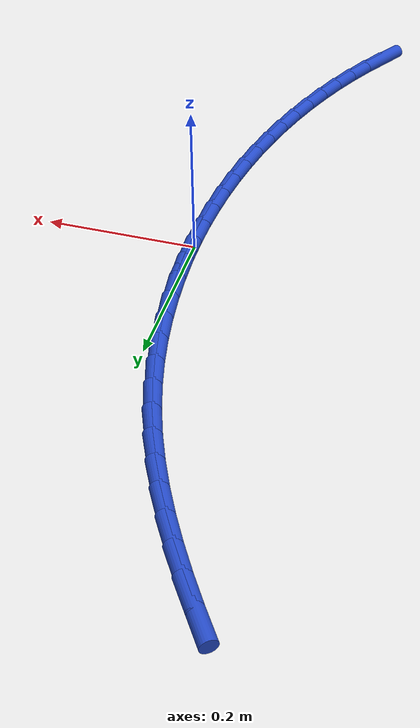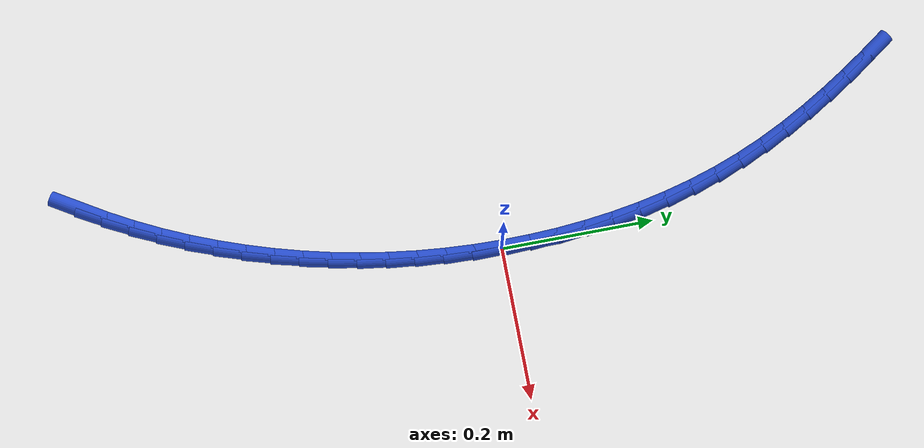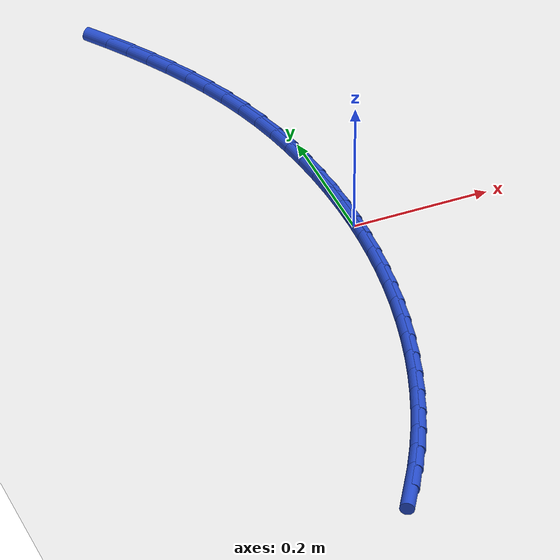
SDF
<sdf version="1.6">
 <world name="default">
  <model name="ground_plane">
   <static>1</static>
   <link name="link">
    <collision name="collision">
     <geometry><plane><normal>0 0 1</normal><size>100 100</size></plane></geometry>
     <surface><friction><ode><mu>100</mu><mu2>50</mu2></ode></friction></surface>
    </collision>
    <visual name="visual">
     <cast_shadows>0</cast_shadows>
     <geometry><plane><normal>0 0 1</normal><size>100 100</size></plane></geometry>
     <material>
      <script><uri>file://media/materials/scripts/gazebo.material</uri><name>Gazebo/WhiteGlow</name></script>
     </material>
    </visual>
   </link>
  </model>
  <model name="line">
   <link name="link_0">
    <pose>1.734723475976807e-17 6.938893903907228e-18 0.01 0 1.57 -1.5604815669485337</pose>
    <collision name="collision">
     <geometry><cylinder><radius>0.01</radius><length>0.08</length></cylinder></geometry>
    </collision>
    <visual name="visual">
     <material>
      <script><name>Gazebo/Blue</name><uri>file://media/materials/scripts/gazebo.material</uri></script>
     </material>
     <geometry><cylinder><radius>0.01</radius><length>0.08</length></cylinder></geometry>
    </visual>
   </link>
   <link name="link_1">
    <pose>-0.00038702410670637374 0.03752005734090273 0.01 0 1.57 -1.524317743062453</pose>
    <collision name="collision">
     <geometry><cylinder><radius>0.01</radius><length>0.08</length></cylinder></geometry>
    </collision>
    <visual name="visual">
     <material>
      <script><name>Gazebo/Blue</name><uri>file://media/materials/scripts/gazebo.material</uri></script>
     </material>
     <geometry><cylinder><radius>0.01</radius><length>0.08</length></cylinder></geometry>
    </visual>
   </link>
   <link name="link_2">
    <pose>-0.0021332918375777895 0.07506444760037405 0.01 0 1.57 -1.4868718520865138</pose>
    <collision name="collision">
     <geometry><cylinder><radius>0.01</radius><length>0.08</length></cylinder></geometry>
    </collision>
    <visual name="visual">
     <material>
      <script><name>Gazebo/Blue</name><uri>file://media/materials/scripts/gazebo.material</uri></script>
     </material>
     <geometry><cylinder><radius>0.01</radius><length>0.08</length></cylinder></geometry>
    </visual>
   </link>
   <link name="link_3">
    <pose>-0.005283089859301521 0.1125076314728183 0.01 0 1.57 -1.447881875070658</pose>
    <collision name="collision">
     <geometry><cylinder><radius>0.01</radius><length>0.08</length></cylinder></geometry>
    </collision>
    <visual name="visual">
     <material>
      <script><name>Gazebo/Blue</name><uri>file://media/materials/scripts/gazebo.material</uri></script>
     </material>
     <geometry><cylinder><radius>0.01</radius><length>0.08</length></cylinder></geometry>
    </visual>
   </link>
   <link name="link_4">
    <pose>-0.00988070483856485 0.14972406965263976 0.01 0 1.57 -1.4070813392134902</pose>
    <collision name="collision">
     <geometry><cylinder><radius>0.01</radius><length>0.08</length></cylinder></geometry>
    </collision>
    <visual name="visual">
     <material>
      <script><name>Gazebo/Blue</name><uri>file://media/materials/scripts/gazebo.material</uri></script>
     </material>
     <geometry><cylinder><radius>0.01</radius><length>0.08</length></cylinder></geometry>
    </visual>
   </link>
   <link name="link_5">
    <pose>-0.01597042344205507 0.1865882228342427 0.01 0 1.57 -1.3641995270044551</pose>
    <collision name="collision">
     <geometry><cylinder><radius>0.01</radius><length>0.08</length></cylinder></geometry>
    </collision>
    <visual name="visual">
     <material>
      <script><name>Gazebo/Blue</name><uri>file://media/materials/scripts/gazebo.material</uri></script>
     </material>
     <geometry><cylinder><radius>0.01</radius><length>0.08</length></cylinder></geometry>
    </visual>
   </link>
   <link name="link_6">
    <pose>-0.023596532336459454 0.2229745517120315 0.01 0 1.57 -1.3189634490038837</pose>
    <collision name="collision">
     <geometry><cylinder><radius>0.01</radius><length>0.08</length></cylinder></geometry>
    </collision>
    <visual name="visual">
     <material>
      <script><name>Gazebo/Blue</name><uri>file://media/materials/scripts/gazebo.material</uri></script>
     </material>
     <geometry><cylinder><radius>0.01</radius><length>0.08</length></cylinder></geometry>
    </visual>
   </link>
   <link name="link_7">
    <pose>-0.03280331818846533 0.2587575169804106 0.01 0 1.57 -1.2711020888681037</pose>
    <collision name="collision">
     <geometry><cylinder><radius>0.01</radius><length>0.08</length></cylinder></geometry>
    </collision>
    <visual name="visual">
     <material>
      <script><name>Gazebo/Blue</name><uri>file://media/materials/scripts/gazebo.material</uri></script>
     </material>
     <geometry><cylinder><radius>0.01</radius><length>0.08</length></cylinder></geometry>
    </visual>
   </link>
   <link name="link_8">
    <pose>-0.04363506766475993 0.2938115793337841 0.01 0 1.57 -1.2205400924225447</pose>
    <collision name="collision">
     <geometry><cylinder><radius>0.01</radius><length>0.08</length></cylinder></geometry>
    </collision>
    <visual name="visual">
     <material>
      <script><name>Gazebo/Blue</name><uri>file://media/materials/scripts/gazebo.material</uri></script>
     </material>
     <geometry><cylinder><radius>0.01</radius><length>0.08</length></cylinder></geometry>
    </visual>
   </link>
   <link name="link_9">
    <pose>-0.056131040771296575 0.32801723679350003 0.01 0 1.57 -1.1704785263223896</pose>
    <collision name="collision">
     <geometry><cylinder><radius>0.01</radius><length>0.08</length></cylinder></geometry>
    </collision>
    <visual name="visual">
     <material>
      <script><name>Gazebo/Blue</name><uri>file://media/materials/scripts/gazebo.material</uri></script>
     </material>
     <geometry><cylinder><radius>0.01</radius><length>0.08</length></cylinder></geometry>
    </visual>
   </link>
   <link name="link_10">
    <pose>-0.07024144840245235 0.3613619408096501 0.01 0 1.57 -1.1240644393775192</pose>
    <collision name="collision">
     <geometry><cylinder><radius>0.01</radius><length>0.08</length></cylinder></geometry>
    </collision>
    <visual name="visual">
     <material>
      <script><name>Gazebo/Blue</name><uri>file://media/materials/scripts/gazebo.material</uri></script>
     </material>
     <geometry><cylinder><radius>0.01</radius><length>0.08</length></cylinder></geometry>
    </visual>
   </link>
   <link name="link_11">
    <pose>-0.08584010530134929 0.39392489928194013 0.01 0 1.57 -1.0817084656119904</pose>
    <collision name="collision">
     <geometry><cylinder><radius>0.01</radius><length>0.08</length></cylinder></geometry>
    </collision>
    <visual name="visual">
     <material>
      <script><name>Gazebo/Blue</name><uri>file://media/materials/scripts/gazebo.material</uri></script>
     </material>
     <geometry><cylinder><radius>0.01</radius><length>0.08</length></cylinder></geometry>
    </visual>
   </link>
   <link name="link_12">
    <pose>-0.10279834878915926 0.42578829564534365 0.01 0 1.57 -1.0436220101364924</pose>
    <collision name="collision">
     <geometry><cylinder><radius>0.01</radius><length>0.08</length></cylinder></geometry>
    </collision>
    <visual name="visual">
     <material>
      <script><name>Gazebo/Blue</name><uri>file://media/materials/scripts/gazebo.material</uri></script>
     </material>
     <geometry><cylinder><radius>0.01</radius><length>0.08</length></cylinder></geometry>
    </visual>
   </link>
   <link name="link_13">
    <pose>-0.1209875161870541 0.4570343133348337 0.01 0 1.57 -1.0099251140251995</pose>
    <collision name="collision">
     <geometry><cylinder><radius>0.01</radius><length>0.08</length></cylinder></geometry>
    </collision>
    <visual name="visual">
     <material>
      <script><name>Gazebo/Blue</name><uri>file://media/materials/scripts/gazebo.material</uri></script>
     </material>
     <geometry><cylinder><radius>0.01</radius><length>0.08</length></cylinder></geometry>
    </visual>
   </link>
   <link name="link_14">
    <pose>-0.14027894481620568 0.48774513578538364 0.01 0 1.57 -0.9806653728320486</pose>
    <collision name="collision">
     <geometry><cylinder><radius>0.01</radius><length>0.08</length></cylinder></geometry>
    </collision>
    <visual name="visual">
     <material>
      <script><name>Gazebo/Blue</name><uri>file://media/materials/scripts/gazebo.material</uri></script>
     </material>
     <geometry><cylinder><radius>0.01</radius><length>0.08</length></cylinder></geometry>
    </visual>
   </link>
   <link name="link_15">
    <pose>-0.16054397199778578 0.5180029464319668 0.01 0 1.57 -0.9558370981229501</pose>
    <collision name="collision">
     <geometry><cylinder><radius>0.01</radius><length>0.08</length></cylinder></geometry>
    </collision>
    <visual name="visual">
     <material>
      <script><name>Gazebo/Blue</name><uri>file://media/materials/scripts/gazebo.material</uri></script>
     </material>
     <geometry><cylinder><radius>0.01</radius><length>0.08</length></cylinder></geometry>
    </visual>
   </link>
   <link name="link_185">
    <pose>-0.15111600110301274 -0.5306206620152712 0.01 0 1.57 1.0265311877575891</pose>
    <collision name="collision">
     <geometry><cylinder><radius>0.01</radius><length>0.08</length></cylinder></geometry>
    </collision>
    <visual name="visual">
     <material>
      <script><name>Gazebo/Blue</name><uri>file://media/materials/scripts/gazebo.material</uri></script>
     </material>
     <geometry><cylinder><radius>0.01</radius><length>0.08</length></cylinder></geometry>
    </visual>
   </link>
   <link name="link_186">
    <pose>-0.13186875535726808 -0.4988197630462494 0.01 0 1.57 1.0691322408830473</pose>
    <collision name="collision">
     <geometry><cylinder><radius>0.01</radius><length>0.08</length></cylinder></geometry>
    </collision>
    <visual name="visual">
     <material>
      <script><name>Gazebo/Blue</name><uri>file://media/materials/scripts/gazebo.material</uri></script>
     </material>
     <geometry><cylinder><radius>0.01</radius><length>0.08</length></cylinder></geometry>
    </visual>
   </link>
   <link name="link_187">
    <pose>-0.11395151386936284 -0.4661517979677052 0.01 0 1.57 1.1101127531916524</pose>
    <collision name="collision">
     <geometry><cylinder><radius>0.01</radius><length>0.08</length></cylinder></geometry>
    </collision>
    <visual name="visual">
     <material>
      <script><name>Gazebo/Blue</name><uri>file://media/materials/scripts/gazebo.material</uri></script>
     </material>
     <geometry><cylinder><radius>0.01</radius><length>0.08</length></cylinder></geometry>
    </visual>
   </link>
   <link name="link_188">
    <pose>-0.09735776876807738 -0.43271691825885433 0.01 0 1.57 1.1496258819021585</pose>
    <collision name="collision">
     <geometry><cylinder><radius>0.01</radius><length>0.08</length></cylinder></geometry>
    </collision>
    <visual name="visual">
     <material>
      <script><name>Gazebo/Blue</name><uri>file://media/materials/scripts/gazebo.material</uri></script>
     </material>
     <geometry><cylinder><radius>0.01</radius><length>0.08</length></cylinder></geometry>
    </visual>
   </link>
   <link name="link_189">
    <pose>-0.08208101218219208 -0.39861527539891245 0.01 0 1.57 1.187831261133114</pose>
    <collision name="collision">
     <geometry><cylinder><radius>0.01</radius><length>0.08</length></cylinder></geometry>
    </collision>
    <visual name="visual">
     <material>
      <script><name>Gazebo/Blue</name><uri>file://media/materials/scripts/gazebo.material</uri></script>
     </material>
     <geometry><cylinder><radius>0.01</radius><length>0.08</length></cylinder></geometry>
    </visual>
   </link>
   <link name="link_190">
    <pose>-0.06811473624048733 -0.36394702086709535 0.01 0 1.57 1.2248929313003034</pose>
    <collision name="collision">
     <geometry><cylinder><radius>0.01</radius><length>0.08</length></cylinder></geometry>
    </collision>
    <visual name="visual">
     <material>
      <script><name>Gazebo/Blue</name><uri>file://media/materials/scripts/gazebo.material</uri></script>
     </material>
     <geometry><cylinder><radius>0.01</radius><length>0.08</length></cylinder></geometry>
    </visual>
   </link>
   <link name="link_191">
    <pose>-0.055452433071743475 -0.32881230614261847 0.01 0 1.57 1.2609909328097078</pose>
    <collision name="collision">
     <geometry><cylinder><radius>0.01</radius><length>0.08</length></cylinder></geometry>
    </collision>
    <visual name="visual">
     <material>
      <script><name>Gazebo/Blue</name><uri>file://media/materials/scripts/gazebo.material</uri></script>
     </material>
     <geometry><cylinder><radius>0.01</radius><length>0.08</length></cylinder></geometry>
    </visual>
   </link>
   <link name="link_192">
    <pose>-0.044087723880311236 -0.2933101204123846 0.01 0 1.57 1.2966564899006239</pose>
    <collision name="collision">
     <geometry><cylinder><radius>0.01</radius><length>0.08</length></cylinder></geometry>
    </collision>
    <visual name="visual">
     <material>
      <script><name>Gazebo/Blue</name><uri>file://media/materials/scripts/gazebo.material</uri></script>
     </material>
     <geometry><cylinder><radius>0.01</radius><length>0.08</length></cylinder></geometry>
    </visual>
   </link>
   <link name="link_193">
    <pose>-0.03401821016819406 -0.257503611306545 0.01 0 1.57 1.3323555072422975</pose>
    <collision name="collision">
     <geometry><cylinder><radius>0.01</radius><length>0.08</length></cylinder></geometry>
    </collision>
    <visual name="visual">
     <material>
      <script><name>Gazebo/Blue</name><uri>file://media/materials/scripts/gazebo.material</uri></script>
     </material>
     <geometry><cylinder><radius>0.01</radius><length>0.08</length></cylinder></geometry>
    </visual>
   </link>
   <link name="link_194">
    <pose>-0.025246132963917093 -0.22141414871208778 0.01 0 1.57 1.3680780055888409</pose>
    <collision name="collision">
     <geometry><cylinder><radius>0.01</radius><length>0.08</length></cylinder></geometry>
    </collision>
    <visual name="visual">
     <material>
      <script><name>Gazebo/Blue</name><uri>file://media/materials/scripts/gazebo.material</uri></script>
     </material>
     <geometry><cylinder><radius>0.01</radius><length>0.08</length></cylinder></geometry>
    </visual>
   </link>
   <link name="link_195">
    <pose>-0.017773995188857125 -0.1850607442382204 0.01 0 1.57 1.4037879848275931</pose>
    <collision name="collision">
     <geometry><cylinder><radius>0.01</radius><length>0.08</length></cylinder></geometry>
    </collision>
    <visual name="visual">
     <material>
      <script><name>Gazebo/Blue</name><uri>file://media/materials/scripts/gazebo.material</uri></script>
     </material>
     <geometry><cylinder><radius>0.01</radius><length>0.08</length></cylinder></geometry>
    </visual>
   </link>
   <link name="link_196">
    <pose>-0.011604299764390948 -0.14846240949415068 0.01 0 1.57 1.4394496731069883</pose>
    <collision name="collision">
     <geometry><cylinder><radius>0.01</radius><length>0.08</length></cylinder></geometry>
    </collision>
    <visual name="visual">
     <material>
      <script><name>Gazebo/Blue</name><uri>file://media/materials/scripts/gazebo.material</uri></script>
     </material>
     <geometry><cylinder><radius>0.01</radius><length>0.08</length></cylinder></geometry>
    </visual>
   </link>
   <link name="link_197">
    <pose>-0.006739549611895366 -0.11163815608908619 0.01 0 1.57 1.4750277939624585</pose>
    <collision name="collision">
     <geometry><cylinder><radius>0.01</radius><length>0.08</length></cylinder></geometry>
    </collision>
    <visual name="visual">
     <material>
      <script><name>Gazebo/Blue</name><uri>file://media/materials/scripts/gazebo.material</uri></script>
     </material>
     <geometry><cylinder><radius>0.01</radius><length>0.08</length></cylinder></geometry>
    </visual>
   </link>
   <link name="link_198">
    <pose>-0.0031822476527471537 -0.07460699563223452 0.01 0 1.57 1.5104878234119785</pose>
    <collision name="collision">
     <geometry><cylinder><radius>0.01</radius><length>0.08</length></cylinder></geometry>
    </collision>
    <visual name="visual">
     <material>
      <script><name>Gazebo/Blue</name><uri>file://media/materials/scripts/gazebo.material</uri></script>
     </material>
     <geometry><cylinder><radius>0.01</radius><length>0.08</length></cylinder></geometry>
    </visual>
   </link>
   <link name="link_199">
    <pose>-0.0009348968083231026 -0.03738793973280331 0.01 0 1.57 1.5457962322391312</pose>
    <collision name="collision">
     <geometry><cylinder><radius>0.01</radius><length>0.08</length></cylinder></geometry>
    </collision>
    <visual name="visual">
     <material>
      <script><name>Gazebo/Blue</name><uri>file://media/materials/scripts/gazebo.material</uri></script>
     </material>
     <geometry><cylinder><radius>0.01</radius><length>0.08</length></cylinder></geometry>
    </visual>
   </link>
   <link name="link_200">
    <pose>-1.734723475976807e-18 -1.8041124150158794e-16 0.01 0 1.57 -1.560671944379694</pose>
    <collision name="collision">
     <geometry><cylinder><radius>0.01</radius><length>0.08</length></cylinder></geometry>
    </collision>
    <visual name="visual">
     <material>
      <script><name>Gazebo/Blue</name><uri>file://media/materials/scripts/gazebo.material</uri></script>
     </material>
     <geometry><cylinder><radius>0.01</radius><length>0.08</length></cylinder></geometry>
    </visual>
   </link>
   <link name="link_201">
    <pose>-0.00038006014915466235 0.037537811956968065 0.01 0 1.57 -1.5606719443796933</pose>
    <collision name="collision">
     <geometry><cylinder><radius>0.01</radius><length>0.08</length></cylinder></geometry>
    </collision>
    <visual name="visual">
     <material>
      <script><name>Gazebo/Blue</name><uri>file://media/materials/scripts/gazebo.material</uri></script>
     </material>
     <geometry><cylinder><radius>0.01</radius><length>0.08</length></cylinder></geometry>
    </visual>
   </link>
  </model>
 </world>
</sdf>
